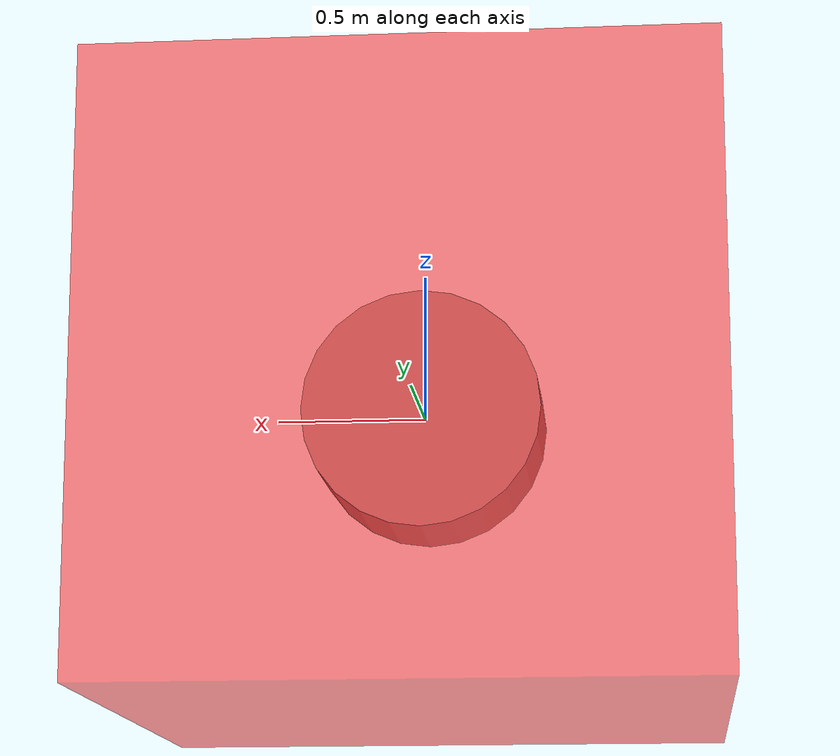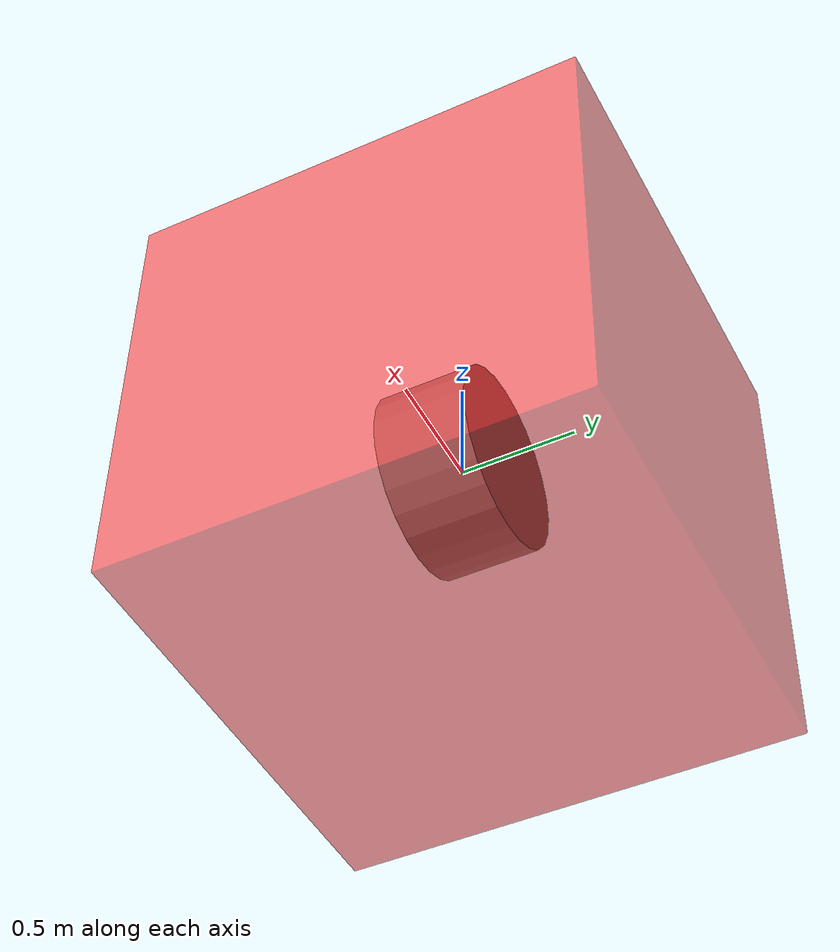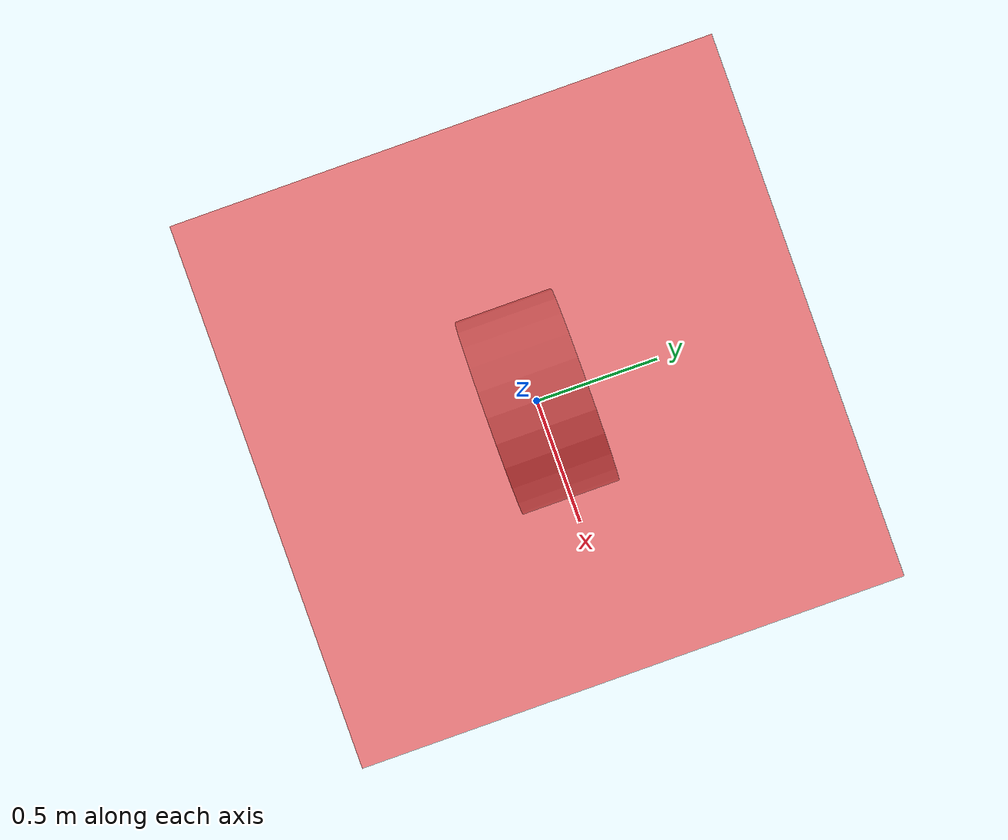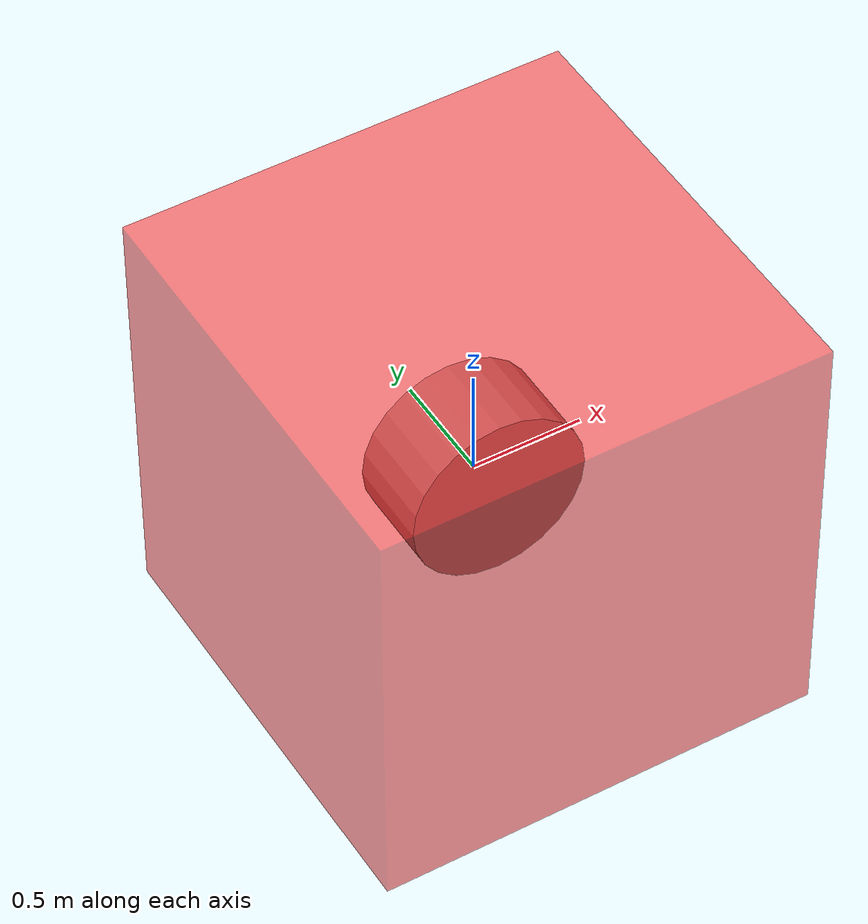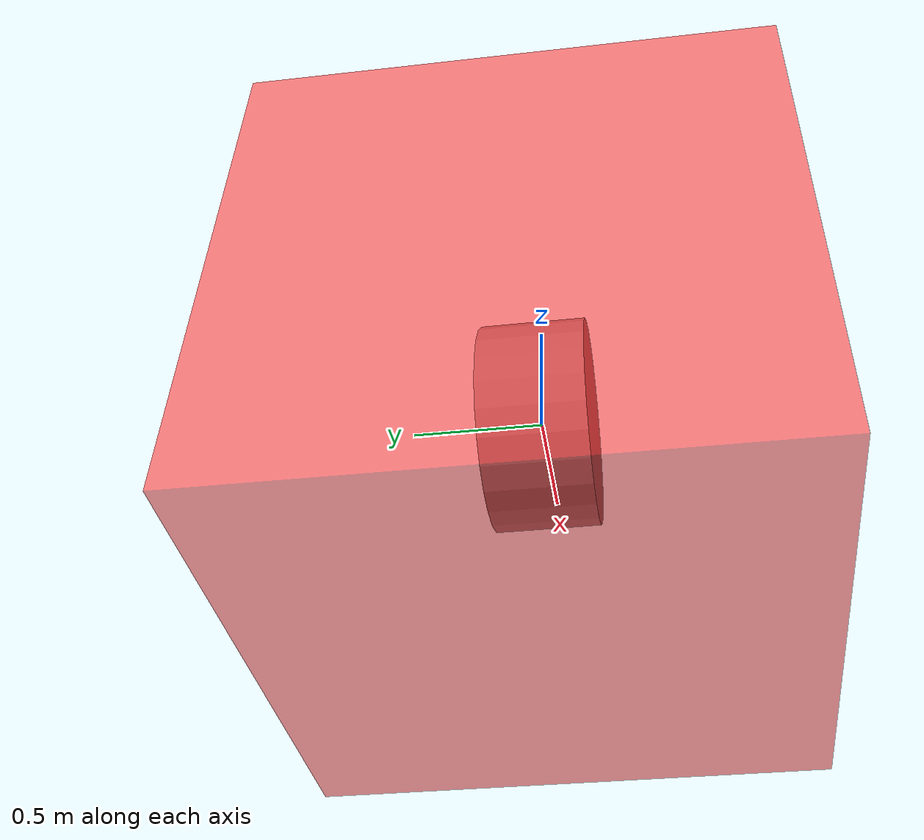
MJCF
<mujoco>
	<option gravity="0 0 0"/>

	<asset>
		<texture name="checker" builtin="checker" width="10" height="10"/>
		<material name="checker" texture="checker" />
	</asset>

	<worldbody>
		<body name="hub">
			<freejoint/>
			<geom name="hub_box" type="box" size="1 1 1" density="200" rgba="1 0 0 0.5"/>

			<body name="wheel_1" pos="0 0 0" xyaxes="1 0 0 0 0 1">
				<geom name="wheel_1" type="cylinder" size="0.4 0.2" density="2000" material="checker"/>
				<joint name="wheel_1" type="hinge" axis="0 0 1"/>
			</body>

		</body>

	</worldbody>

	<actuator>
		<motor name="wheel_1" joint="wheel_1" />
	</actuator>

</mujoco>
